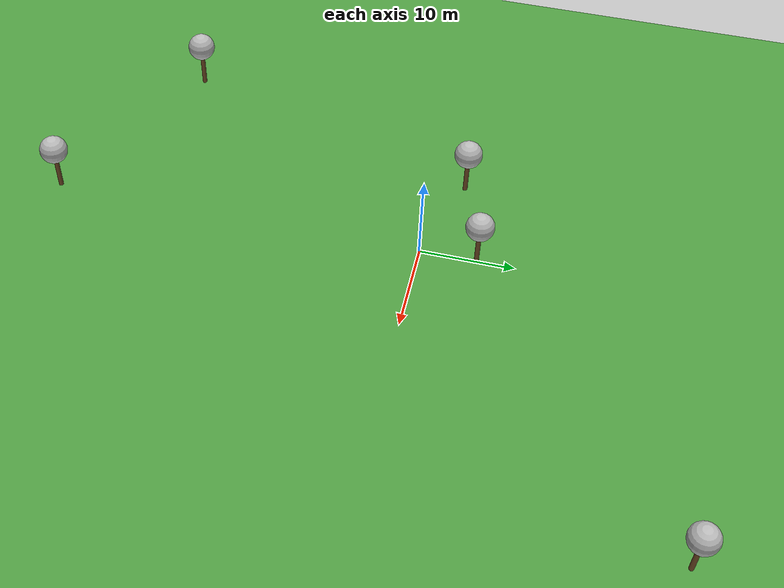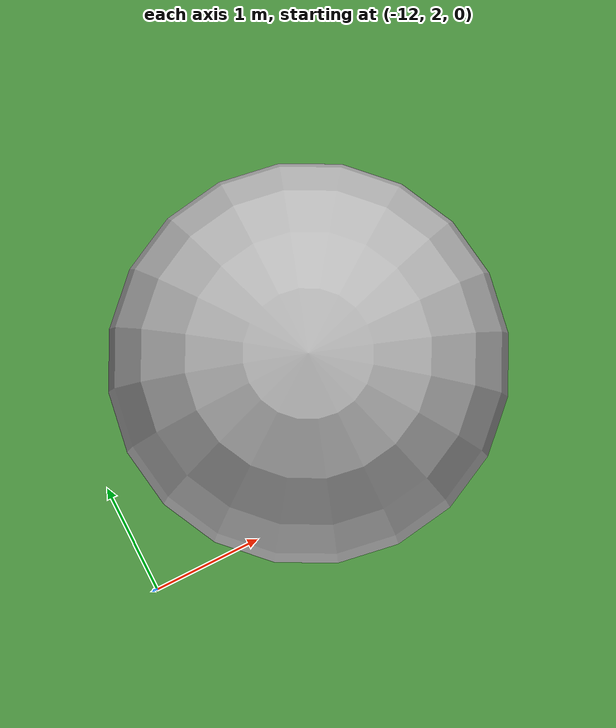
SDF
<?xml version="1.0" ?>
<?xml-model href="http://sdformat.org/schemas/root.xsd" schematypens="http://www.w3.org/2001/XMLSchema"?>
<sdf version="1.5">
  <world name="default">

    <!-- coordinate system {-->
    <spherical_coordinates>
      <surface_model>EARTH_WGS84</surface_model>
      <latitude_deg>47.397743</latitude_deg>
      <longitude_deg>8.545594</longitude_deg>
      <elevation>0.0</elevation>
      <heading_deg>0</heading_deg>
    </spherical_coordinates>

    <physics name="default_physics" default="0" type="ode">
      <gravity>0 0 -9.8066</gravity>
      <ode>
        <solver>
          <type>quick</type>
          <iters>50</iters>
          <sor>1.0</sor>
          <use_dynamic_moi_rescaling>0</use_dynamic_moi_rescaling>
        </solver>
        <constraints>
          <cfm>0</cfm>
          <erp>0.2</erp>
          <contact_max_correcting_vel>1000</contact_max_correcting_vel>
          <contact_surface_layer>0.001</contact_surface_layer>
        </constraints>
      </ode>
      <max_step_size>0.004</max_step_size>
      <real_time_factor>1</real_time_factor>
      <real_time_update_rate>250</real_time_update_rate>
      <magnetic_field>6.0e-06 2.3e-05 -4.2e-05</magnetic_field>
    </physics>

    <scene>
      <shadows>false</shadows>
    </scene>

    <light type="directional" name="sun">
      <cast_shadows>true</cast_shadows>
      <pose>250 250 600 0 0 0</pose>
      <diffuse>0.8 0.8 0.8 1</diffuse>
      <specular>0.2 0.2 0.2 1</specular>
      <attenuation>
        <range>1000</range>
        <constant>0.9</constant>
        <linear>0.01</linear>
        <quadratic>0.001</quadratic>
      </attenuation>
      <direction>0 0 -1</direction>
    </light>

    <!-- Trees -->
    <model name='tree_5'>
      <static>1</static>
      <link name='link'>
        <pose frame=''>0 0 0.1 0 -0 0</pose>
        <collision name='collision_trunk'>
          <pose frame=''>0 0 2 0 -0 0</pose>
          <geometry>
            <cylinder>
              <radius>0.25</radius>
              <length>4</length>
            </cylinder>
          </geometry>
        </collision>
        <collision name='collision_treetop'>
          <pose frame=''>0 0 5.2 0 -0 0</pose>
          <geometry>
            <sphere>
              <radius>1.5</radius>
            </sphere>
          </geometry>
        </collision>
        <visual name='trunk'>
          <pose frame=''>0 0 2 0 -0 0</pose>
          <geometry>
            <cylinder>
              <radius>0.25</radius>
              <length>4</length>
            </cylinder>
          </geometry>
          <material>
            <script>
              <uri>model://tree_simple/scripts</uri>
              <uri>model://tree_simple/materials/textures</uri>
              <name>TreeSimple/Trunk</name>
            </script>
          </material>
        </visual>
        <visual name='treetop'>
          <pose frame=''>0 0 5.2 0 -0 0</pose>
          <geometry>
            <sphere>
              <radius>1.5</radius>
            </sphere>
          </geometry>
          <material>
            <script>
              <uri>model://tree_simple/scripts</uri>
              <uri>model://tree_simple/materials/textures</uri>
              <name>TreeSimple/Treetop</name>
            </script>
          </material>
        </visual>
        <self_collide>0</self_collide>
        <kinematic>0</kinematic>
      </link>
      <pose frame=''>-20 -30 0 0 -0 0</pose>
    </model>

    <model name='tree_4'>
      <static>1</static>
      <link name='link'>
        <pose frame=''>0 0 0.1 0 -0 0</pose>
        <collision name='collision_trunk'>
          <pose frame=''>0 0 2 0 -0 0</pose>
          <geometry>
            <cylinder>
              <radius>0.25</radius>
              <length>4</length>
            </cylinder>
          </geometry>
        </collision>
        <collision name='collision_treetop'>
          <pose frame=''>0 0 5.2 0 -0 0</pose>
          <geometry>
            <sphere>
              <radius>1.5</radius>
            </sphere>
          </geometry>
        </collision>
        <visual name='trunk'>
          <pose frame=''>0 0 2 0 -0 0</pose>
          <geometry>
            <cylinder>
              <radius>0.25</radius>
              <length>4</length>
            </cylinder>
          </geometry>
          <material>
            <script>
              <uri>model://tree_simple/scripts</uri>
              <uri>model://tree_simple/materials/textures</uri>
              <name>TreeSimple/Trunk</name>
            </script>
          </material>
        </visual>
        <visual name='treetop'>
          <pose frame=''>0 0 5.2 0 -0 0</pose>
          <geometry>
            <sphere>
              <radius>1.5</radius>
            </sphere>
          </geometry>
          <material>
            <script>
              <uri>model://tree_simple/scripts</uri>
              <uri>model://tree_simple/materials/textures</uri>
              <name>TreeSimple/Treetop</name>
            </script>
          </material>
        </visual>
        <self_collide>0</self_collide>
        <kinematic>0</kinematic>
      </link>
      <pose frame=''>0 -40 0 0 -0 0</pose>
    </model>

    <model name='tree_3'>
      <static>1</static>
      <link name='link'>
        <pose frame=''>0 0 0.1 0 -0 0</pose>
        <collision name='collision_trunk'>
          <pose frame=''>0 0 2 0 -0 0</pose>
          <geometry>
            <cylinder>
              <radius>0.25</radius>
              <length>4</length>
            </cylinder>
          </geometry>
        </collision>
        <collision name='collision_treetop'>
          <pose frame=''>0 0 5.2 0 -0 0</pose>
          <geometry>
            <sphere>
              <radius>1.5</radius>
            </sphere>
          </geometry>
        </collision>
        <visual name='trunk'>
          <pose frame=''>0 0 2 0 -0 0</pose>
          <geometry>
            <cylinder>
              <radius>0.25</radius>
              <length>4</length>
            </cylinder>
          </geometry>
          <material>
            <script>
              <uri>model://tree_simple/scripts</uri>
              <uri>model://tree_simple/materials/textures</uri>
              <name>TreeSimple/Trunk</name>
            </script>
          </material>
        </visual>
        <visual name='treetop'>
          <pose frame=''>0 0 5.2 0 -0 0</pose>
          <geometry>
            <sphere>
              <radius>1.5</radius>
            </sphere>
          </geometry>
          <material>
            <script>
              <uri>model://tree_simple/scripts</uri>
              <uri>model://tree_simple/materials/textures</uri>
              <name>TreeSimple/Treetop</name>
            </script>
          </material>
        </visual>
        <self_collide>0</self_collide>
        <kinematic>0</kinematic>
      </link>
      <pose frame=''>-10 3 0 0 -0 0</pose>
    </model>

    <model name='tree_2'>
      <static>1</static>
      <link name='link'>
        <pose frame=''>0 0 0.1 0 -0 0</pose>
        <collision name='collision_trunk'>
          <pose frame=''>0 0 2 0 -0 0</pose>
          <geometry>
            <cylinder>
              <radius>0.25</radius>
              <length>4</length>
            </cylinder>
          </geometry>
        </collision>
        <collision name='collision_treetop'>
          <pose frame=''>0 0 5.2 0 -0 0</pose>
          <geometry>
            <sphere>
              <radius>1.5</radius>
            </sphere>
          </geometry>
        </collision>
        <visual name='trunk'>
          <pose frame=''>0 0 2 0 -0 0</pose>
          <geometry>
            <cylinder>
              <radius>0.25</radius>
              <length>4</length>
            </cylinder>
          </geometry>
          <material>
            <script>
              <uri>model://tree_simple/scripts</uri>
              <uri>model://tree_simple/materials/textures</uri>
              <name>TreeSimple/Trunk</name>
            </script>
          </material>
        </visual>
        <visual name='treetop'>
          <pose frame=''>0 0 5.2 0 -0 0</pose>
          <geometry>
            <sphere>
              <radius>1.5</radius>
            </sphere>
          </geometry>
          <material>
            <script>
              <uri>model://tree_simple/scripts</uri>
              <uri>model://tree_simple/materials/textures</uri>
              <name>TreeSimple/Treetop</name>
            </script>
          </material>
        </visual>
        <self_collide>0</self_collide>
        <kinematic>0</kinematic>
      </link>
      <pose frame=''>0 6 0 0 -0 0</pose>
    </model>

    <model name='tree_1'>
      <static>1</static>
      <link name='link'>
        <pose frame=''>0 0 0.1 0 -0 0</pose>
        <collision name='collision_trunk'>
          <pose frame=''>0 0 2 0 -0 0</pose>
          <geometry>
            <cylinder>
              <radius>0.25</radius>
              <length>4</length>
            </cylinder>
          </geometry>
        </collision>
        <collision name='collision_treetop'>
          <pose frame=''>0 0 5.2 0 -0 0</pose>
          <geometry>
            <sphere>
              <radius>1.5</radius>
            </sphere>
          </geometry>
        </collision>
        <visual name='trunk'>
          <pose frame=''>0 0 2 0 -0 0</pose>
          <geometry>
            <cylinder>
              <radius>0.25</radius>
              <length>4</length>
            </cylinder>
          </geometry>
          <material>
            <script>
              <uri>model://tree_simple/scripts</uri>
              <uri>model://tree_simple/materials/textures</uri>
              <name>TreeSimple/Trunk</name>
            </script>
          </material>
        </visual>
        <visual name='treetop'>
          <pose frame=''>0 0 5.2 0 -0 0</pose>
          <geometry>
            <sphere>
              <radius>1.5</radius>
            </sphere>
          </geometry>
          <material>
            <script>
              <uri>model://tree_simple/scripts</uri>
              <uri>model://tree_simple/materials/textures</uri>
              <name>TreeSimple/Treetop</name>
            </script>
          </material>
        </visual>
        <self_collide>0</self_collide>
        <kinematic>0</kinematic>
      </link>
      <pose frame=''>30 30 0 0 0 0</pose>
    </model>

<model name="ground_plane">
      <static>true</static>
      <link name="link">
        <collision name="collision">
          <pose>0 0 0 0 0 0</pose>
          <geometry>
            <plane>
              <normal>0 0 1</normal>
              <size>100 100</size>
            </plane>
          </geometry>
          <surface>
            <friction>
              <ode>
                <mu>1</mu>
                <mu2>1</mu2>
              </ode>
            </friction>
          </surface>
        </collision>
        <visual name="grass">
          <pose>0 0 0 0 0 0</pose>
          <cast_shadows>false</cast_shadows>
          <geometry>
            <plane>
              <normal>0 0 1</normal>
              <size>150 250</size>
            </plane>
          </geometry>
          <material>
            <script>
              <name>Gazebo/Grass</name>
            </script>
          </material>
        </visual>
      </link>
    </model>

    <gui>
      <camera name="camera">
        <pose>-60 -100 30 0 0.4 0.89</pose>
      </camera>
    </gui>

  </world>
</sdf>
